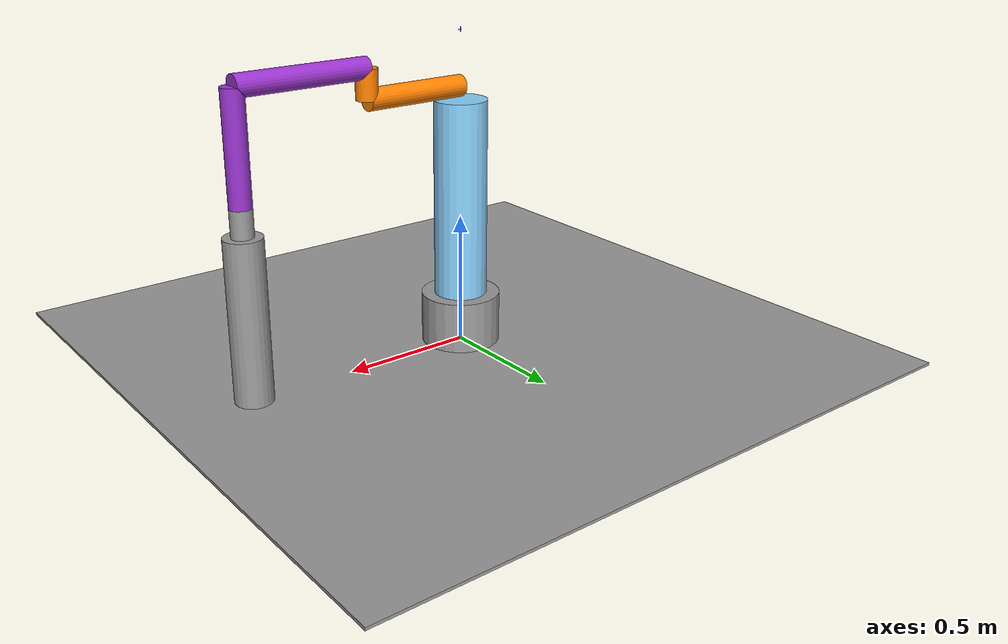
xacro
<?xml version="1.0"?>
<robot xmlns:xacro="http://www.ros.org/wiki/xacro" name="scara_robot">
    <xacro:arg name="initial_positions_file" default="initial_positions.yaml" />

    <!-- Import scara_robot urdf file -->
    <xacro:include filename="$(find scara_robot)/urdf/scara.xacro" />

    <!-- Import control_xacro -->
    <xacro:include filename="scara_robot.ros2_control.xacro" />

    <xacro:scara_robot_ros2_control name="FakeSystem" initial_positions_file="$(arg initial_positions_file)"/>

</robot>

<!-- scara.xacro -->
<robot xmlns:xacro="http://ros.org/wiki/xacro" name="scara_robot">

  <!-- Parámetros actualizados -->
  <xacro:property name="H0" value="0.2"/>
  <xacro:property name="L0" value="0.8"/>
  <xacro:property name="L1" value="0.4"/>
  <xacro:property name="Z1" value="0.11"/>
  <xacro:property name="L2" value="0.5"/>
  <xacro:property name="Z2" value="0.4"/>
  <xacro:property name="H3_max" value="-0.4"/>
  <xacro:property name="H3_fixed" value="0.1"/>
  <xacro:property name="L4" value="0.6"/>
  <xacro:property name="L5" value="1"/>
  <xacro:property name="L6" value="0.35"/>
  <xacro:property name="link_radius1" value="0.15"/>
  <xacro:property name="link_radius2" value="0.075"/>
  <xacro:property name="link_radius3" value="0.04"/>
  <xacro:property name="link_radius4" value="0.070"/>
  <xacro:property name="link_radius5" value="0.1"/>

  <!-- Materiales -->
  <material name="orange"><color rgba="1.0 0.5 0.0 1"/></material>
  <material name="purple"><color rgba="0.6 0.2 0.8 1"/></material>
  <material name="yellow"><color rgba="1.0 1.0 0.0 1"/></material>
  <material name="gray"><color rgba="0.6 0.6 0.6 1"/></material>
  <material name="red"><color rgba="1 0 0 1"/></material>
  <material name="green"><color rgba="0 1 0 1"/></material>
  <material name="blue"><color rgba="0 0 1 1"/></material>
  <material name="celeste"><color rgba="0.53 0.81 0.98 1"/></material>

  <!-- Macro para ejes visuales reducidos -->
  <xacro:macro name="axis_marker" params="xyz">
    <visual><origin xyz="${xyz}" rpy="0 0 0"/><geometry><box size="0.02 0.0005 0.0005"/></geometry><material name="red"/></visual>
    <visual><origin xyz="${xyz}" rpy="0 0 1.5708"/><geometry><box size="0.02 0.0005 0.0005"/></geometry><material name="green"/></visual>
    <visual><origin xyz="${xyz}" rpy="0 -1.5708 0"/><geometry><box size="0.02 0.0005 0.0005"/></geometry><material name="blue"/></visual>
  </xacro:macro>

  <!-- Link base mundial -->
  <link name="world">
    <visual>
      <geometry>
        <box size="2.5 2.5 0.01"/>
      </geometry>
      <origin xyz="0 0 0" rpy="0 0 0"/>
      <material name="gray"/>
    </visual>

    <collision>
      <geometry>
        <box size="2.5 2.5 0.01"/>
      </geometry>
      <origin xyz="0 0 0" rpy="0 0 0"/>
      <material name="gray"/>
    </collision>
  </link>

  <!-- Joint desde el mundo al pedestal -->
  <joint name="world_to_pedestal" type="fixed">
    <parent link="world"/>
    <child link="pedestal"/>
    <origin xyz="0 0 0" rpy="0 0 0"/>
  </joint>

  <!-- Pedestal fijo -->
  <link name="pedestal">
    <visual>
      <geometry><cylinder length="${H0}" radius="${link_radius1}"/></geometry>
      <origin xyz="0 0 ${H0/2}" rpy="0 0 0"/>
      <material name="gray"/>
    </visual>

    <collision>
      <geometry><cylinder length="${H0}" radius="${link_radius1}"/></geometry>
      <origin xyz="0 0 ${H0/2}" rpy="0 0 0"/>
      <material name="gray"/>
    </collision>
  </link>

  <!-- Columna vertical giratoria (celeste) -->
  <link name="base_link">
    <visual>
      <geometry><cylinder length="${L0}" radius="${link_radius5}"/></geometry>
      <origin xyz="0 0 ${L6}" rpy="0 0 0"/>
      <material name="celeste"/>
    </visual>
    <xacro:axis_marker xyz="0 0 ${L0/2}"/>

    <collision>
      <geometry><cylinder length="${L0}" radius="${link_radius5}"/></geometry>
      <origin xyz="0 0 ${L6}" rpy="0 0 0"/>
      <material name="celeste"/>
    </collision>
  </link>

  <joint name="joint_0" type="revolute">
    <parent link="pedestal"/>
    <child link="base_link"/>
    <origin xyz="0 0 ${H0}" rpy="0 0 0"/>
    <axis xyz="0 0 1"/>  <!-- ← Eje de rotación deseado: Y -->
    <limit effort="1" velocity="1.0" lower="-2.61799" upper="2.61799"/>
  </joint>

  <!-- Primer brazo horizontal naranja -->
  <link name="link_1">
    <visual>
      <geometry><cylinder length="${L1}" radius="${link_radius3}"/></geometry>
      <origin xyz="${L1/2} 0 0" rpy="0 1.5708 0"/>  <!--  Cilindro apuntando en Z -->
      <material name="orange"/>
    </visual>
    <xacro:axis_marker xyz="0 0 ${L1/2}"/>
    <collision>
      <geometry><cylinder length="${L1}" radius="${link_radius3}"/></geometry>
      <origin xyz="${L1/2} 0 0" rpy="0 1.5708 0"/>
      <material name="orange"/>
    </collision>

  </link>

  <joint name="joint_1" type="revolute">
    <parent link="base_link"/>
    <child link="link_1"/>
    <origin xyz="0 0 ${L0}" rpy="0 0 0"/>
    <axis xyz="0 1 0"/>  <!-- ← Eje de rotación deseado: Y -->
    <limit effort="1" velocity="1.0" lower="-1.5708" upper="0"/>
  </joint>

  <!-- Parte vertical de la L naranja (Z1 arriba) -->
  <link name="link_1_vertical">
    <visual>
      <geometry><cylinder length="${Z1}" radius="${link_radius3}"/></geometry>
      <origin xyz="0 0 ${Z1/2}" rpy="0 0 0"/>
      <material name="orange"/>
    </visual>
    <xacro:axis_marker xyz="0 0 ${Z1/2}"/>
    <collision>
      <geometry><cylinder length="${Z1}" radius="${link_radius3}"/></geometry>
      <origin xyz="0 0 ${Z1/2}" rpy="0 0 0"/>
      <material name="orange"/>
    </collision>
  </link>

  <joint name="joint_2" type="fixed">
    <parent link="link_1"/>
    <child link="link_1_vertical"/>
    <origin xyz="${L1} 0 0" rpy="0 0 0"/>
  </joint>

  <!-- Parte horizontal de la L morada -->
  <link name="link_2">
    <visual>
      <geometry><cylinder length="${L2}" radius="${link_radius3}"/></geometry>
      <origin xyz="${L2/2} 0 0" rpy="0 1.5708 0"/>
      <material name="purple"/>
    </visual>
    <xacro:axis_marker xyz="${L2/2} 0 0"/>
    <collision>
      <geometry><cylinder length="${L2}" radius="${link_radius3}"/></geometry>
      <origin xyz="${L2/2} 0 0" rpy="0 1.5708 0"/>
      <material name="purple"/>
    </collision>
  </link>

  <joint name="joint_3" type="revolute">
    <parent link="link_1_vertical"/>
    <child link="link_2"/>
    <origin xyz="0 0 ${Z1}" rpy="0 0 0"/>
    <axis xyz="0 0 1"/>
    <limit effort="1" velocity="1.0" lower="-2.96706" upper="2.96706"/>
  </joint>

  <!-- Parte vertical de la L morada -->
  <link name="link_2_down">
    <visual>
      <geometry><cylinder length="${Z2}" radius="${link_radius3}"/></geometry>
      <origin xyz="0 0 ${-Z2/2}" rpy="0 0 0"/>
      <material name="purple"/>
    </visual>
    <xacro:axis_marker xyz="0 0 ${-Z2/2}"/>
    <collision>
      <geometry><cylinder length="${Z2}" radius="${link_radius3}"/></geometry>
      <origin xyz="0 0 ${-Z2/2}" rpy="0 0 0"/>
      <material name="purple"/>
    </collision>
  </link>

  <joint name="joint_4" type="fixed">
    <parent link="link_2"/>
    <child link="link_2_down"/>
    <origin xyz="${L2} 0 0" rpy="0 0 0"/>
  </joint>

  <!-- Eje prismático con parte fija de 0.2 m -->
  <link name="link_3">
    <visual>
      <geometry><cylinder radius="${link_radius3}" length="${H3_fixed}"/></geometry>
      <origin xyz="0 0 ${-H3_fixed/2}" rpy="0 0 0"/>
      <material name="gray"/>
    </visual>
    <xacro:axis_marker xyz="0 0 ${-H3_fixed/2}"/>
    <collision>
      <geometry><cylinder radius="${link_radius3}" length="${H3_fixed}"/></geometry>
      <origin xyz="0 0 ${-H3_fixed/2}" rpy="0 0 0"/>
      <material name="gray"/>
    </collision>
  </link>

  <joint name="joint_5" type="prismatic">
    <parent link="link_2_down"/>
    <child link="link_3"/>
    <origin xyz="0 0 ${-Z2}" rpy="0 0 0"/>
    <axis xyz="0 0 -1"/>
    <limit effort="1" velocity="0.5" lower="${H3_max}" upper="0.0"/>
  </joint>

  <link name="link_4">
    <visual>
      <geometry><cylinder radius="${link_radius4}" length="${L4}"/></geometry>
      <origin xyz="0 0 ${-L4/2}" rpy="0 0 0"/>
      <material name="gray"/>
    </visual>
    <xacro:axis_marker xyz="0 0 ${-L4/2}"/>
    <collision>
      <geometry><cylinder radius="${link_radius4}" length="${L4}"/></geometry>
      <origin xyz="0 0 ${-L4/2}" rpy="0 0 0"/>
      <material name="gray"/>
    </collision>
  </link>

  <joint name="joint_6" type="revolute">
    <parent link="link_3"/>
    <child link="link_4"/>
    <origin xyz="0 0 ${-H3_fixed}" rpy="0 0 0"/>
    <axis xyz="0 0 1"/>
    <limit effort="1" velocity="1.0" lower="-3.14" upper="3.14"/>
  </joint>

  <link name="tcp">
    <visual>
      <geometry><sphere radius="0.025"/></geometry>
      <material name="celeste"/>
    </visual>
    <xacro:axis_marker xyz="0 0 0"/>
    <collision>
      <geometry><sphere radius="0.025"/></geometry>
      <material name="celeste"/>
    </collision>
  </link>

  <joint name="joint_tcp" type="fixed">
    <parent link="link_4"/>
    <child link="tcp"/>
    <origin xyz="0 0 ${-L4}" rpy="0 0 0"/>
  </joint>

</robot>
